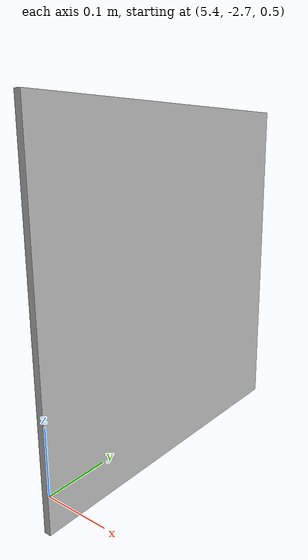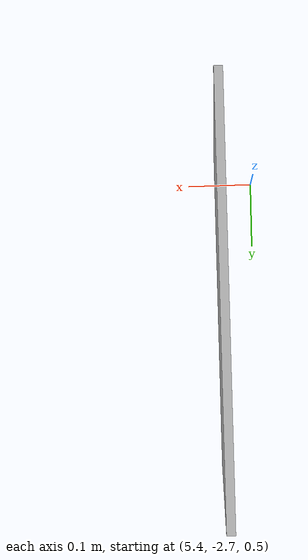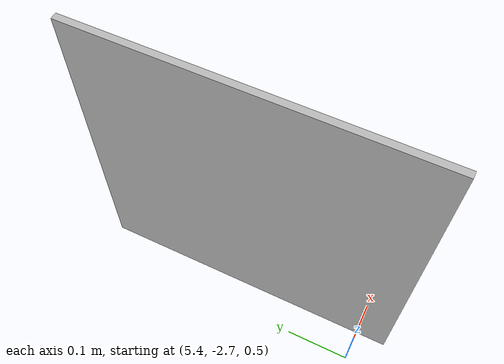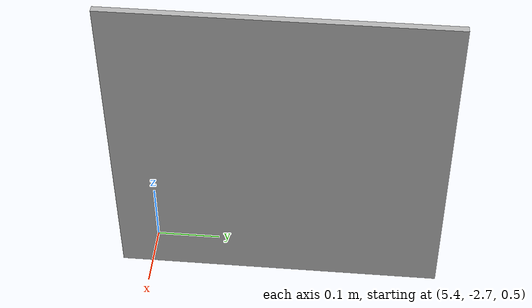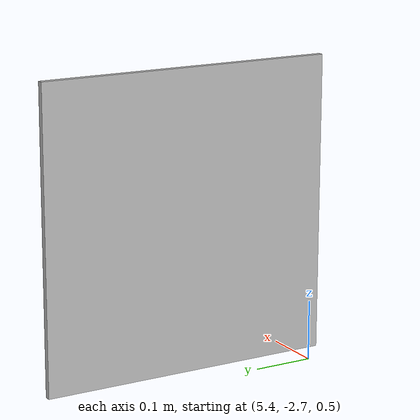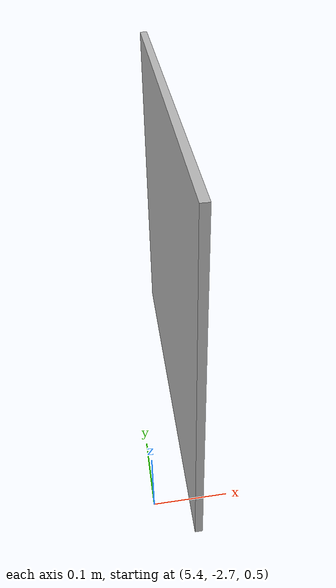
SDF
<?xml version="1.0" ?>
<sdf version="1.7">
<model name='unit_box'>
      <pose>5.45315 -2.49783 0.5 0 -0 0</pose>
      <link name='link'>
        <inertial>
          <mass>1</mass>
          <inertia>
            <ixx>0.166667</ixx>
            <ixy>0</ixy>
            <ixz>0</ixz>
            <iyy>0.166667</iyy>
            <iyz>0</iyz>
            <izz>0.166667</izz>
          </inertia>
          <pose>0 0 0 0 -0 0</pose>
        </inertial>
        <collision name='collision'>
          <geometry>
            <box>
              <size>1 1 1</size>
            </box>
          </geometry>
          <max_contacts>10</max_contacts>
          <surface>
            <contact>
              <ode/>
            </contact>
            <bounce/>
            <friction>
              <torsional>
                <ode/>
              </torsional>
              <ode/>
            </friction>
          </surface>
        </collision>
        <visual name='visual'>
          <geometry>
          <mesh>
          <uri>models://target1/meshes/target1.dae</uri>
          </mesh>
          </geometry>
          <material>
            <script>
              <name>targetMat2/Husky</name>
              <uri>models://target1/materials/scripts/target1.material</uri>
              <uri>models://target1/materials/textures/HuskyImg2.png</uri>
            </script>
          </material>
        </visual>
        <self_collide>0</self_collide>
        <enable_wind>0</enable_wind>
        <kinematic>0</kinematic>
      </link>
    </model>
    </sdf>
